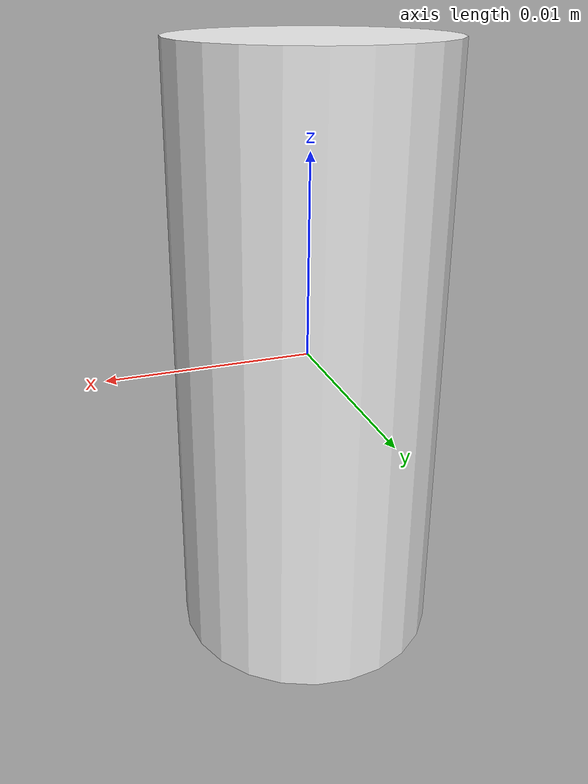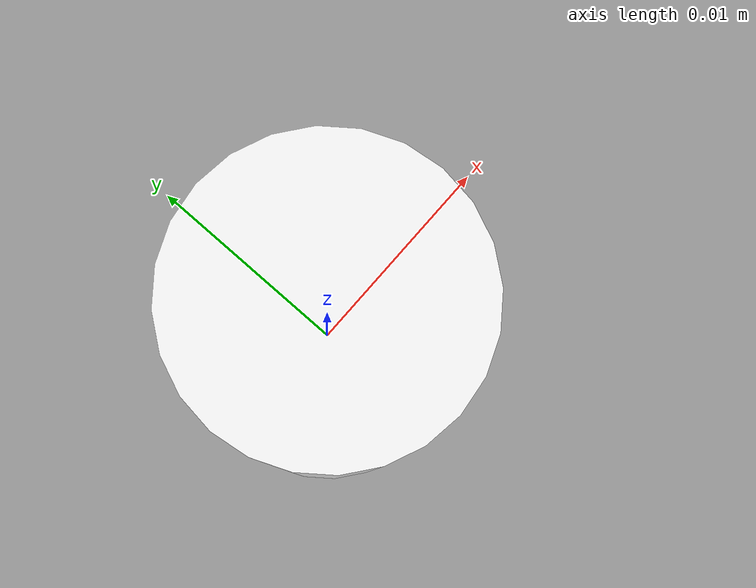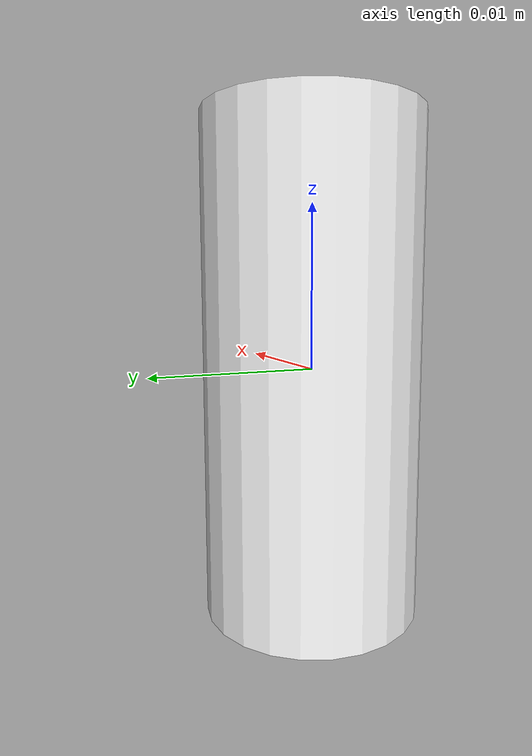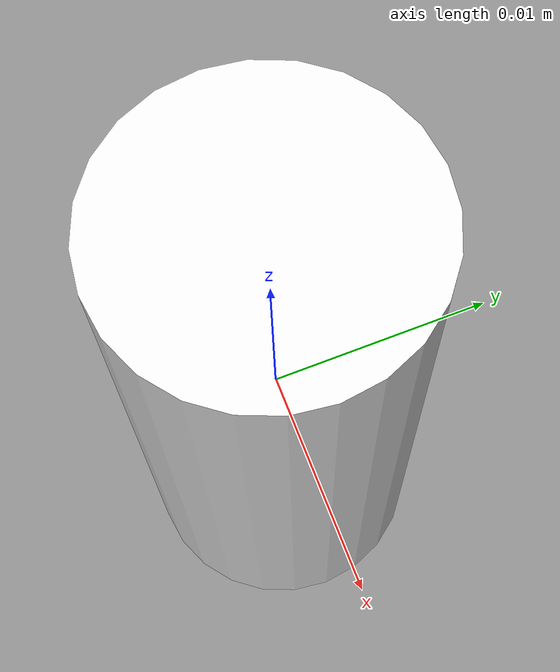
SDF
<?xml version="1.0"?>
<sdf version="1.6">
  <model name="Metal_Peg_v2">
    <link name="link">
      <inertial>
        <mass>0.0121</mass>
        <inertia>
          <ixx>1.3397422499999998e-06</ixx>
          <ixy>0</ixy>
          <ixz>0</ixz>
          <iyy>1.3397422499999998e-06</iyy>
          <iyz>0</iyz>
          <izz>6.58845e-08</izz>
        </inertia>
      </inertial>

      <collision name="collision">
        <geometry>
          <cylinder>
            <radius> 0.0066 </radius>
            <length> 0.030 </length>
          </cylinder>
        </geometry>
        <surface>
          <contact>
            <!-- stainless steel 18-8 material properties -->
            <poissons_ratio>0.305</poissons_ratio>
            <elastic_modulus>2.0e+11</elastic_modulus>
            <ode>
              <kp>100000</kp>
              <kd>100</kd>
              <max_vel>100.0</max_vel>
              <min_depth>0.001</min_depth>
            </ode>
          </contact>
          <friction>
            <torsional>
              <coefficient>1.0</coefficient>
              <use_patch_radius>0</use_patch_radius>
              <surface_radius>0.01</surface_radius>
            </torsional>
          </friction>
        </surface>
      </collision>

      <visual name="visual">
        <geometry>
          <cylinder>
            <radius> 0.0066 </radius>
            <length> 0.030 </length>
          </cylinder>
        </geometry>
        <material>
          <script>
            <uri>file://media/materials/scripts/gazebo.material</uri>
            <name>Gazebo/White</name>
          </script>
        </material>
      </visual>

    </link>
  </model>
</sdf>
